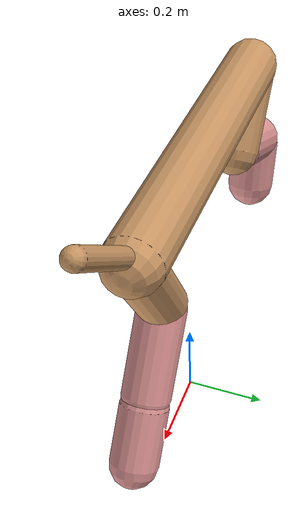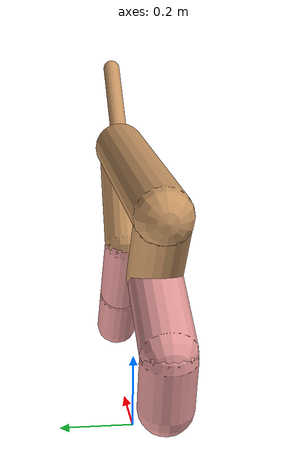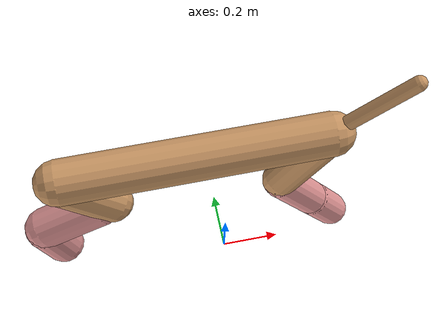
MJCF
<mujoco model="cheetah">
  <compiler angle="radian" coordinate="local" inertiafromgeom="true" settotalmass="14" />
  <default>
    <joint armature=".1" damping=".01" limited="true" solimplimit="0 .8 .03" solreflimit=".02 1" stiffness="8" />
    <geom conaffinity="0" condim="3" contype="1" friction="0.8 .1 .1" rgba="0.8 0.6 .4 1" solimp="0.0 0.8 0.01" solref="0.02 1" />
    <motor ctrllimited="true" ctrlrange="-1 1" />
  </default>
  <size nstack="300000" nuser_geom="1" />
  <option gravity="0 0 -9.81" timestep="0.01" />
  <worldbody>
    <body name="torso" pos="0.0 0.0 0.7116723812643225">
      <joint armature="0" axis="1 0 0" damping="0" limited="false" name="ignorex" pos="0 0 0" stiffness="0" type="slide" />
      <joint armature="0" axis="0 0 1" damping="0" limited="false" name="ignorez" pos="0 0 0" stiffness="0" type="slide" />
      <joint armature="0" axis="0 1 0" damping="0" limited="false" name="ignorey" pos="0 0 0" stiffness="0" type="hinge" />
      <geom fromto="-0.5 0.0 0.0 0.3117578027767548 0.0 0.0" name="torso" size="0.06876730204423555" type="capsule" />
      <geom axisangle="0 1 0 .87" name="head" pos="0.4117578027767548 0.0 0.1" size="0.023231309879601682 0.15" type="capsule" />

      <body name="bthigh" pos="-.5 0 0">
        <joint axis="0 1 0" damping="6" name="bthigh" pos="0 0 0" range="-.52 1.05" stiffness="240" type="hinge" />
        <geom axisangle="0 1 0 -3.8" name="bthigh" pos="0.07453416204933104 0.0 -0.09689441066413035" size="0.06553704443892513 0.10323292028636694" type="capsule" />
        <body name="bshin" pos="0.10906832409866207 0.0 -0.1837888213282607">
          <joint axis="0 1 0" damping="4.5" name="bshin" pos="0 0 0" range="-.785 .785" stiffness="180" type="hinge" />
          <geom axisangle="0 1 0 -2.03" name="bshin" pos="-0.1013541947056541 0.0 -0.05067709735282705" rgba="0.9 0.6 0.6 1" size="0.06553704443892513 0.10679267615831063" type="capsule" />
          <body name="bfoot" pos="-0.2027083894113082 0.0 -0.1013541947056541">
            <joint axis="0 1 0" damping="3" name="bfoot" pos="0 0 0" range="-.4 .785" stiffness="120" type="hinge" />
            <geom axisangle="0 1 0 -.27" name="bfoot" pos="0.02199968757100965 0.0 -0.07113232314626454" rgba="0.9 0.6 0.6 1" size="0.06553704443892513 0.06692341039254134" type="capsule" />
            <inertial mass="10" />
          </body>
        </body>
      </body>
      <body name="fthigh" pos="0.3117578027767548 0.0 0.0">
        <joint axis="0 1 0" damping="4.5" name="fthigh" pos="0 0 0" range="-1.5 0.8" stiffness="180" type="hinge" />
        <geom axisangle="0 1 0 .52" name="fthigh" pos="-0.0708182247254069 0.0 -0.12140267095784038" size="0.0579347423686561 0.13462387730978545" type="capsule" />
        <body name="fshin" pos="-0.1416364494508138 0.0 -0.24280534191568076">
          <joint axis="0 1 0" damping="3" name="fshin" pos="0 0 0" range="-1.2 1.1" stiffness="120" type="hinge" />
          <geom axisangle="0 1 0 -.6" name="fshin" pos="0.06575775241730111 0.0 -0.09104919565472461" rgba="0.9 0.6 0.6 1" size="0.0579347423686561 0.10729421800629517" type="capsule" />
          <body name="ffoot" pos="0.13151550483460223 0.0 -0.18209839130944921">
            <joint axis="0 1 0" damping="1.5" name="ffoot" pos="0 0 0" range="-3.1 -0.3" stiffness="60" type="hinge" />
            <geom axisangle="0 1 0 -.6" name="ffoot" pos="0.04546217051717275 0.0 -0.07071893191560207" rgba="0.9 0.6 0.6 1" size="0.0579347423686561 0.07085467226830813" type="capsule" />
            <inertial mass="10" />
          </body>
        </body>
      </body>
    </body>
  </worldbody>
  <actuator>
    <motor gear="120" joint="bthigh" name="bthigh" />
    <motor gear="90" joint="bshin" name="bshin" />
    <motor gear="60" joint="bfoot" name="bfoot" />
    <motor gear="120" joint="fthigh" name="fthigh" />
    <motor gear="60" joint="fshin" name="fshin" />
    <motor gear="30" joint="ffoot" name="ffoot" />
  </actuator>
</mujoco>
